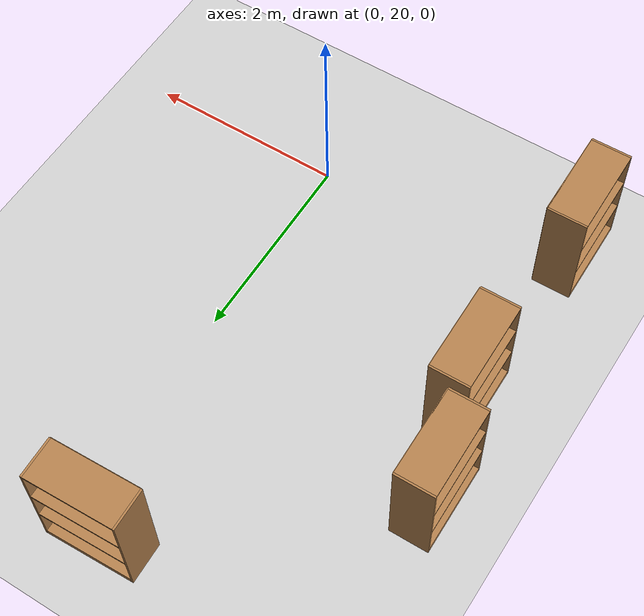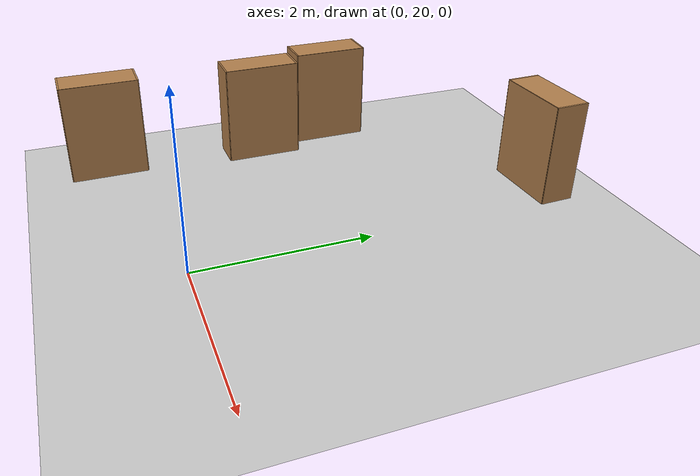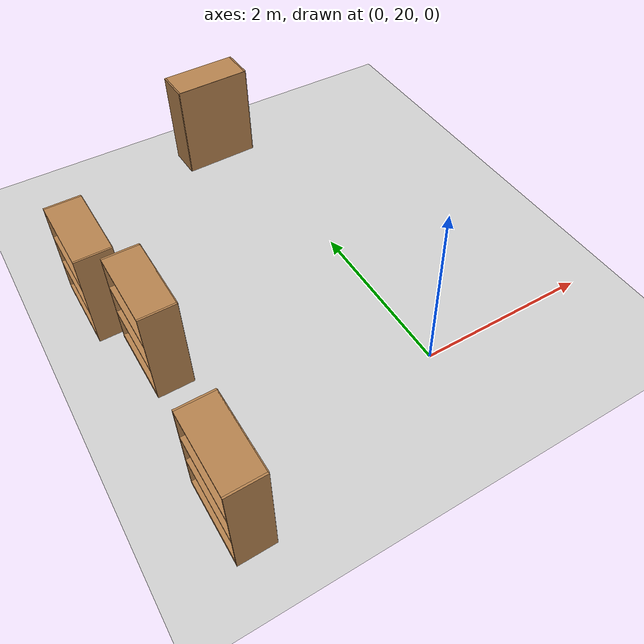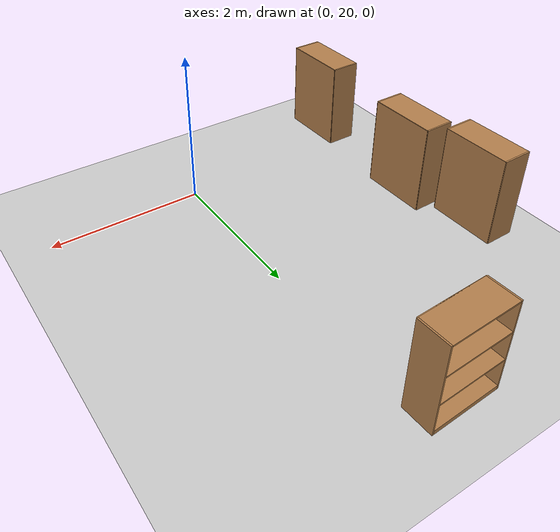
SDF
<sdf version="1.6">
 <world name="default">
  <model name="ground_plane">
   <static>1</static>
   <link name="link">
    <collision name="collision">
     <geometry><plane><normal>0 0 1</normal><size>100 100</size></plane></geometry>
     <surface>
      <contact><collide_bitmask>65535</collide_bitmask></contact>
      <friction><ode><mu>100</mu><mu2>50</mu2></ode></friction>
     </surface>
    </collision>
    <visual name="visual">
     <cast_shadows>0</cast_shadows>
     <geometry><plane><normal>0 0 1</normal><size>100 100</size></plane></geometry>
     <material>
      <script><uri>file://media/materials/scripts/gazebo.material</uri><name>Gazebo/Grey</name></script>
     </material>
    </visual>
   </link>
  </model>
  <model name="bookshelf_clone_2_clone_clone_0_clone_3_clone_0_clone_1_clone_clone_0_clone_1_clone_0">
   <static>1</static>
   <link name="link">
    <inertial><mass>1</mass></inertial>
    <collision name="back">
     <pose>0 0.005 0.6 0 -0 0</pose>
     <geometry><box><size>0.9 0.01 1.2</size></box></geometry>
    </collision>
    <visual name="visual1">
     <pose>0 0.005 0.6 0 -0 0</pose>
     <geometry><box><size>0.9 0.01 1.2</size></box></geometry>
     <material>
      <script><uri>file://media/materials/scripts/gazebo.material</uri><name>Gazebo/Wood</name></script>
     </material>
    </visual>
    <collision name="left_side">
     <pose>0.45 -0.195 0.6 0 -0 0</pose>
     <geometry><box><size>0.02 0.4 1.2</size></box></geometry>
    </collision>
    <visual name="visual2">
     <pose>0.45 -0.195 0.6 0 -0 0</pose>
     <geometry><box><size>0.02 0.4 1.2</size></box></geometry>
     <material>
      <script><uri>file://media/materials/scripts/gazebo.material</uri><name>Gazebo/Wood</name></script>
     </material>
    </visual>
    <collision name="right_side">
     <pose>-0.45 -0.195 0.6 0 -0 0</pose>
     <geometry><box><size>0.02 0.4 1.2</size></box></geometry>
    </collision>
    <visual name="visual3">
     <pose>-0.45 -0.195 0.6 0 -0 0</pose>
     <geometry><box><size>0.02 0.4 1.2</size></box></geometry>
     <material>
      <script><uri>file://media/materials/scripts/gazebo.material</uri><name>Gazebo/Wood</name></script>
     </material>
    </visual>
    <collision name="bottom">
     <pose>0 -0.195 0.03 0 -0 0</pose>
     <geometry><box><size>0.88 0.4 0.06</size></box></geometry>
    </collision>
    <visual name="visual4">
     <pose>0 -0.195 0.03 0 -0 0</pose>
     <geometry><box><size>0.88 0.4 0.06</size></box></geometry>
     <material>
      <script><uri>file://media/materials/scripts/gazebo.material</uri><name>Gazebo/Wood</name></script>
     </material>
    </visual>
    <collision name="top">
     <pose>0 -0.195 1.19 0 -0 0</pose>
     <geometry><box><size>0.88 0.4 0.02</size></box></geometry>
    </collision>
    <visual name="visual5">
     <pose>0 -0.195 1.19 0 -0 0</pose>
     <geometry><box><size>0.88 0.4 0.02</size></box></geometry>
     <material>
      <script><uri>file://media/materials/scripts/gazebo.material</uri><name>Gazebo/Wood</name></script>
     </material>
    </visual>
    <collision name="low_shelf">
     <pose>0 -0.195 0.43 0 -0 0</pose>
     <geometry><box><size>0.88 0.4 0.02</size></box></geometry>
    </collision>
    <visual name="visual6">
     <pose>0 -0.195 0.43 0 -0 0</pose>
     <geometry><box><size>0.88 0.4 0.02</size></box></geometry>
     <material>
      <script><uri>file://media/materials/scripts/gazebo.material</uri><name>Gazebo/Wood</name></script>
     </material>
    </visual>
    <collision name="high_shelf">
     <pose>0 -0.195 0.8 0 -0 0</pose>
     <geometry><box><size>0.88 0.4 0.02</size></box></geometry>
    </collision>
    <visual name="visual7">
     <pose>0 -0.195 0.8 0 -0 0</pose>
     <geometry><box><size>0.88 0.4 0.02</size></box></geometry>
     <material>
      <script><uri>file://media/materials/scripts/gazebo.material</uri><name>Gazebo/Wood</name></script>
     </material>
    </visual>
   </link>
   <pose>-2.32271 19.5234 0 0 0 -1.56003</pose>
  </model>
  <model name="bookshelf_clone_2_clone_clone_0_clone_3_clone_0_clone_1_clone_clone_0_clone_1_clone_3">
   <static>1</static>
   <link name="link">
    <inertial><mass>1</mass></inertial>
    <collision name="back">
     <pose>0 0.005 0.6 0 -0 0</pose>
     <geometry><box><size>0.9 0.01 1.2</size></box></geometry>
    </collision>
    <visual name="visual1">
     <pose>0 0.005 0.6 0 -0 0</pose>
     <geometry><box><size>0.9 0.01 1.2</size></box></geometry>
     <material>
      <script><uri>file://media/materials/scripts/gazebo.material</uri><name>Gazebo/Wood</name></script>
     </material>
    </visual>
    <collision name="left_side">
     <pose>0.45 -0.195 0.6 0 -0 0</pose>
     <geometry><box><size>0.02 0.4 1.2</size></box></geometry>
    </collision>
    <visual name="visual2">
     <pose>0.45 -0.195 0.6 0 -0 0</pose>
     <geometry><box><size>0.02 0.4 1.2</size></box></geometry>
     <material>
      <script><uri>file://media/materials/scripts/gazebo.material</uri><name>Gazebo/Wood</name></script>
     </material>
    </visual>
    <collision name="right_side">
     <pose>-0.45 -0.195 0.6 0 -0 0</pose>
     <geometry><box><size>0.02 0.4 1.2</size></box></geometry>
    </collision>
    <visual name="visual3">
     <pose>-0.45 -0.195 0.6 0 -0 0</pose>
     <geometry><box><size>0.02 0.4 1.2</size></box></geometry>
     <material>
      <script><uri>file://media/materials/scripts/gazebo.material</uri><name>Gazebo/Wood</name></script>
     </material>
    </visual>
    <collision name="bottom">
     <pose>0 -0.195 0.03 0 -0 0</pose>
     <geometry><box><size>0.88 0.4 0.06</size></box></geometry>
    </collision>
    <visual name="visual4">
     <pose>0 -0.195 0.03 0 -0 0</pose>
     <geometry><box><size>0.88 0.4 0.06</size></box></geometry>
     <material>
      <script><uri>file://media/materials/scripts/gazebo.material</uri><name>Gazebo/Wood</name></script>
     </material>
    </visual>
    <collision name="top">
     <pose>0 -0.195 1.19 0 -0 0</pose>
     <geometry><box><size>0.88 0.4 0.02</size></box></geometry>
    </collision>
    <visual name="visual5">
     <pose>0 -0.195 1.19 0 -0 0</pose>
     <geometry><box><size>0.88 0.4 0.02</size></box></geometry>
     <material>
      <script><uri>file://media/materials/scripts/gazebo.material</uri><name>Gazebo/Wood</name></script>
     </material>
    </visual>
    <collision name="low_shelf">
     <pose>0 -0.195 0.43 0 -0 0</pose>
     <geometry><box><size>0.88 0.4 0.02</size></box></geometry>
    </collision>
    <visual name="visual6">
     <pose>0 -0.195 0.43 0 -0 0</pose>
     <geometry><box><size>0.88 0.4 0.02</size></box></geometry>
     <material>
      <script><uri>file://media/materials/scripts/gazebo.material</uri><name>Gazebo/Wood</name></script>
     </material>
    </visual>
    <collision name="high_shelf">
     <pose>0 -0.195 0.8 0 -0 0</pose>
     <geometry><box><size>0.88 0.4 0.02</size></box></geometry>
    </collision>
    <visual name="visual7">
     <pose>0 -0.195 0.8 0 -0 0</pose>
     <geometry><box><size>0.88 0.4 0.02</size></box></geometry>
     <material>
      <script><uri>file://media/materials/scripts/gazebo.material</uri><name>Gazebo/Wood</name></script>
     </material>
    </visual>
   </link>
   <pose>-2.23236 21.4646 0 0 0 -1.56003</pose>
  </model>
  <model name="bookshelf_clone_2_clone_clone_0_clone_3_clone_0_clone_1_clone_clone_0_clone_1_clone_4">
   <static>1</static>
   <link name="link">
    <inertial><mass>1</mass></inertial>
    <collision name="back">
     <pose>0 0.005 0.6 0 -0 0</pose>
     <geometry><box><size>0.9 0.01 1.2</size></box></geometry>
    </collision>
    <visual name="visual1">
     <pose>0 0.005 0.6 0 -0 0</pose>
     <geometry><box><size>0.9 0.01 1.2</size></box></geometry>
     <material>
      <script><uri>file://media/materials/scripts/gazebo.material</uri><name>Gazebo/Wood</name></script>
     </material>
    </visual>
    <collision name="left_side">
     <pose>0.45 -0.195 0.6 0 -0 0</pose>
     <geometry><box><size>0.02 0.4 1.2</size></box></geometry>
    </collision>
    <visual name="visual2">
     <pose>0.45 -0.195 0.6 0 -0 0</pose>
     <geometry><box><size>0.02 0.4 1.2</size></box></geometry>
     <material>
      <script><uri>file://media/materials/scripts/gazebo.material</uri><name>Gazebo/Wood</name></script>
     </material>
    </visual>
    <collision name="right_side">
     <pose>-0.45 -0.195 0.6 0 -0 0</pose>
     <geometry><box><size>0.02 0.4 1.2</size></box></geometry>
    </collision>
    <visual name="visual3">
     <pose>-0.45 -0.195 0.6 0 -0 0</pose>
     <geometry><box><size>0.02 0.4 1.2</size></box></geometry>
     <material>
      <script><uri>file://media/materials/scripts/gazebo.material</uri><name>Gazebo/Wood</name></script>
     </material>
    </visual>
    <collision name="bottom">
     <pose>0 -0.195 0.03 0 -0 0</pose>
     <geometry><box><size>0.88 0.4 0.06</size></box></geometry>
    </collision>
    <visual name="visual4">
     <pose>0 -0.195 0.03 0 -0 0</pose>
     <geometry><box><size>0.88 0.4 0.06</size></box></geometry>
     <material>
      <script><uri>file://media/materials/scripts/gazebo.material</uri><name>Gazebo/Wood</name></script>
     </material>
    </visual>
    <collision name="top">
     <pose>0 -0.195 1.19 0 -0 0</pose>
     <geometry><box><size>0.88 0.4 0.02</size></box></geometry>
    </collision>
    <visual name="visual5">
     <pose>0 -0.195 1.19 0 -0 0</pose>
     <geometry><box><size>0.88 0.4 0.02</size></box></geometry>
     <material>
      <script><uri>file://media/materials/scripts/gazebo.material</uri><name>Gazebo/Wood</name></script>
     </material>
    </visual>
    <collision name="low_shelf">
     <pose>0 -0.195 0.43 0 -0 0</pose>
     <geometry><box><size>0.88 0.4 0.02</size></box></geometry>
    </collision>
    <visual name="visual6">
     <pose>0 -0.195 0.43 0 -0 0</pose>
     <geometry><box><size>0.88 0.4 0.02</size></box></geometry>
     <material>
      <script><uri>file://media/materials/scripts/gazebo.material</uri><name>Gazebo/Wood</name></script>
     </material>
    </visual>
    <collision name="high_shelf">
     <pose>0 -0.195 0.8 0 -0 0</pose>
     <geometry><box><size>0.88 0.4 0.02</size></box></geometry>
    </collision>
    <visual name="visual7">
     <pose>0 -0.195 0.8 0 -0 0</pose>
     <geometry><box><size>0.88 0.4 0.02</size></box></geometry>
     <material>
      <script><uri>file://media/materials/scripts/gazebo.material</uri><name>Gazebo/Wood</name></script>
     </material>
    </visual>
   </link>
   <pose>-2.4855 22.4599 0 0 0 -1.56003</pose>
  </model>
  <model name="bookshelf_clone_2_clone_clone_0_clone_3_clone_clone_clone_4">
   <static>1</static>
   <link name="link">
    <inertial><mass>1</mass></inertial>
    <collision name="back">
     <pose>0 0.005 0.6 0 -0 0</pose>
     <geometry><box><size>0.9 0.01 1.2</size></box></geometry>
    </collision>
    <visual name="visual1">
     <pose>0 0.005 0.6 0 -0 0</pose>
     <geometry><box><size>0.9 0.01 1.2</size></box></geometry>
     <material>
      <script><uri>file://media/materials/scripts/gazebo.material</uri><name>Gazebo/Wood</name></script>
     </material>
    </visual>
    <collision name="left_side">
     <pose>0.45 -0.195 0.6 0 -0 0</pose>
     <geometry><box><size>0.02 0.4 1.2</size></box></geometry>
    </collision>
    <visual name="visual2">
     <pose>0.45 -0.195 0.6 0 -0 0</pose>
     <geometry><box><size>0.02 0.4 1.2</size></box></geometry>
     <material>
      <script><uri>file://media/materials/scripts/gazebo.material</uri><name>Gazebo/Wood</name></script>
     </material>
    </visual>
    <collision name="right_side">
     <pose>-0.45 -0.195 0.6 0 -0 0</pose>
     <geometry><box><size>0.02 0.4 1.2</size></box></geometry>
    </collision>
    <visual name="visual3">
     <pose>-0.45 -0.195 0.6 0 -0 0</pose>
     <geometry><box><size>0.02 0.4 1.2</size></box></geometry>
     <material>
      <script><uri>file://media/materials/scripts/gazebo.material</uri><name>Gazebo/Wood</name></script>
     </material>
    </visual>
    <collision name="bottom">
     <pose>0 -0.195 0.03 0 -0 0</pose>
     <geometry><box><size>0.88 0.4 0.06</size></box></geometry>
    </collision>
    <visual name="visual4">
     <pose>0 -0.195 0.03 0 -0 0</pose>
     <geometry><box><size>0.88 0.4 0.06</size></box></geometry>
     <material>
      <script><uri>file://media/materials/scripts/gazebo.material</uri><name>Gazebo/Wood</name></script>
     </material>
    </visual>
    <collision name="top">
     <pose>0 -0.195 1.19 0 -0 0</pose>
     <geometry><box><size>0.88 0.4 0.02</size></box></geometry>
    </collision>
    <visual name="visual5">
     <pose>0 -0.195 1.19 0 -0 0</pose>
     <geometry><box><size>0.88 0.4 0.02</size></box></geometry>
     <material>
      <script><uri>file://media/materials/scripts/gazebo.material</uri><name>Gazebo/Wood</name></script>
     </material>
    </visual>
    <collision name="low_shelf">
     <pose>0 -0.195 0.43 0 -0 0</pose>
     <geometry><box><size>0.88 0.4 0.02</size></box></geometry>
    </collision>
    <visual name="visual6">
     <pose>0 -0.195 0.43 0 -0 0</pose>
     <geometry><box><size>0.88 0.4 0.02</size></box></geometry>
     <material>
      <script><uri>file://media/materials/scripts/gazebo.material</uri><name>Gazebo/Wood</name></script>
     </material>
    </visual>
    <collision name="high_shelf">
     <pose>0 -0.195 0.8 0 -0 0</pose>
     <geometry><box><size>0.88 0.4 0.02</size></box></geometry>
    </collision>
    <visual name="visual7">
     <pose>0 -0.195 0.8 0 -0 0</pose>
     <geometry><box><size>0.88 0.4 0.02</size></box></geometry>
     <material>
      <script><uri>file://media/materials/scripts/gazebo.material</uri><name>Gazebo/Wood</name></script>
     </material>
    </visual>
   </link>
   <pose>-0.415443 24.1092 0 0 0 -3.10717</pose>
  </model>
 </world>
</sdf>
